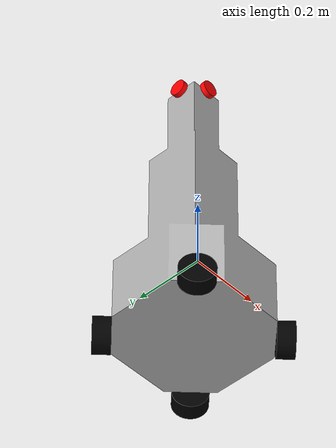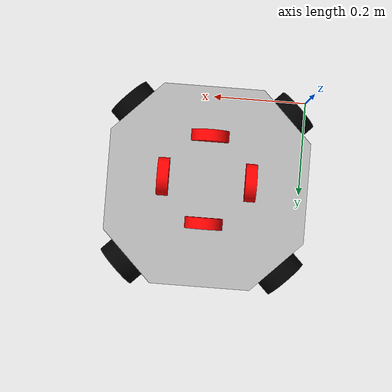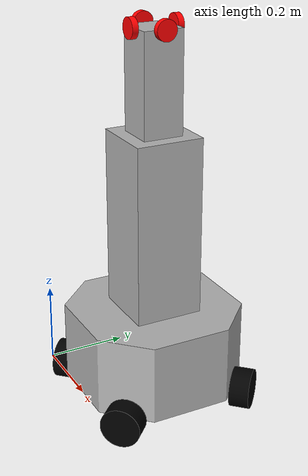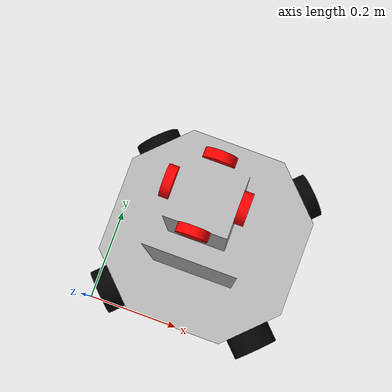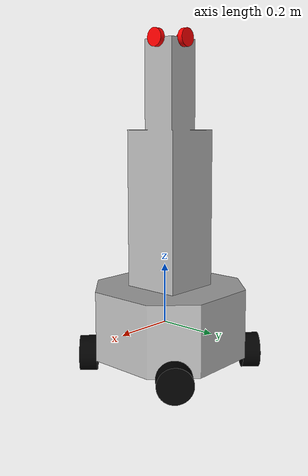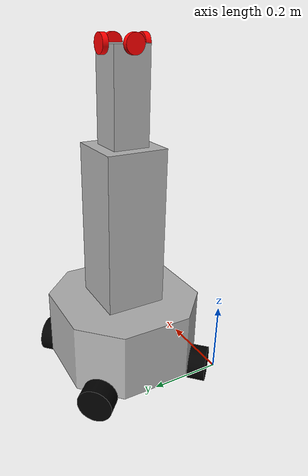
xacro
<?xml version="1.0" ?>
<robot name="robocup_bot" xmlns:xacro="http://www.ros.org/wiki/xacro">

<xacro:include filename="$(find robocup_bot_description)/urdf/materials.xacro" />
<xacro:include filename="$(find robocup_bot_description)/urdf/robocup_bot.trans" />
<xacro:include filename="$(find robocup_bot_description)/urdf/robocup_bot.gazebo" />
<xacro:include filename="$(find robocup_bot_description)/urdf/camera.xacro" />
<xacro:include filename="$(find robocup_bot_description)/urdf/gazebo_control.xacro" />
<link name="base_link">
  <inertial>
    <origin xyz="0.20000000000000004 0.20047111181734686 0.2359412711182623" rpy="0 0 0"/>
    <mass value="341.51424999999995"/>
    <inertia ixx="18.693283" iyy="18.693146" izz="5.443908" ixy="0.0" iyz="-0.039498" ixz="0.0"/>
  </inertial>
  <visual>
    <origin xyz="0 0 0" rpy="0 0 0"/>
    <geometry>
      <mesh filename="file://$(find robocup_bot_description)/meshes/base_link.stl" scale="0.001 0.001 0.001"/>
    </geometry>
    <material name="silver"/>
  </visual>
  <collision>
    <origin xyz="0 0 0" rpy="0 0 0"/>
    <geometry>
      <mesh filename="file://$(find robocup_bot_description)/meshes/base_link.stl" scale="0.001 0.001 0.001"/>
    </geometry>
  </collision>
</link>

<gazebo reference = "base_link">
  <material>Gazebo/White</material>
</gazebo>

<link name="wheel4_1">
  <inertial>
    <origin xyz="-0.017677669529663785 0.017677669529663653 0.0" rpy="0 0 0"/>
    <mass value="3.0826877913349864"/>
    <inertia ixx="0.003211" iyy="0.003211" izz="0.002569" ixy="-0.000642" iyz="0.0" ixz="0.0"/>
  </inertial>
  <visual>
    <origin xyz="-0.05 -0.35 -0.0" rpy="0 0 0"/>
    <geometry>
      <mesh filename="file://$(find robocup_bot_description)/meshes/wheel4_1.stl" scale="0.001 0.001 0.001"/>
    </geometry>
    <material name="black"/>
  </visual>
  <collision>
    <origin xyz="-0.05 -0.35 -0.0" rpy="0 0 0"/>
    <geometry>
      <mesh filename="file://$(find robocup_bot_description)/meshes/wheel4_1.stl" scale="0.001 0.001 0.001"/>
    </geometry>
  </collision>
</link>
<gazebo reference = "wheel4_1">
  <material>Gazebo/Black</material>
</gazebo>

<link name="wheel2_1">
  <inertial>
    <origin xyz="0.017677669529663764 -0.01767766952966364 0.0" rpy="0 0 0"/>
    <mass value="3.0826877913349757"/>
    <inertia ixx="0.003211" iyy="0.003211" izz="0.002569" ixy="-0.000642" iyz="-0.0" ixz="0.0"/>
  </inertial>
  <visual>
    <origin xyz="-0.35 -0.05 -0.0" rpy="0 0 0"/>
    <geometry>
      <mesh filename="file://$(find robocup_bot_description)/meshes/wheel2_1.stl" scale="0.001 0.001 0.001"/>
    </geometry>
    <material name="black"/>
  </visual>
  <collision>
    <origin xyz="-0.35 -0.05 -0.0" rpy="0 0 0"/>
    <geometry>
      <mesh filename="file://$(find robocup_bot_description)/meshes/wheel2_1.stl" scale="0.001 0.001 0.001"/>
    </geometry>
  </collision>
</link>
<gazebo reference = "wheel2_1">
  <material>Gazebo/Black</material>
</gazebo>

<link name="wheel1_1">
  <inertial>
    <origin xyz="-0.017677669529663716 -0.017677669529663716 0.0" rpy="0 0 0"/>
    <mass value="3.0826877913349864"/>
    <inertia ixx="0.003211" iyy="0.003211" izz="0.002569" ixy="0.000642" iyz="0.0" ixz="0.0"/>
  </inertial>
  <visual>
    <origin xyz="-0.05 -0.05 -0.0" rpy="0 0 0"/>
    <geometry>
      <mesh filename="file://$(find robocup_bot_description)/meshes/wheel1_1.stl" scale="0.001 0.001 0.001"/>
    </geometry>
    <material name="black"/>
  </visual>
  <collision>
    <origin xyz="-0.05 -0.05 -0.0" rpy="0 0 0"/>
    <geometry>
      <mesh filename="file://$(find robocup_bot_description)/meshes/wheel1_1.stl" scale="0.001 0.001 0.001"/>
    </geometry>
  </collision>
</link>
<gazebo reference = "wheel1_1">
  <material>Gazebo/Black</material>
</gazebo>

<link name="wheel3_1">
  <inertial>
    <origin xyz="0.017677669529663376 0.017677669529663764 0.0" rpy="0 0 0"/>
    <mass value="3.082687791334989"/>
    <inertia ixx="0.003211" iyy="0.003211" izz="0.002569" ixy="0.000642" iyz="-0.0" ixz="0.0"/>
  </inertial>
  <visual>
    <origin xyz="-0.35 -0.35 -0.0" rpy="0 0 0"/>
    <geometry>
      <mesh filename="file://$(find robocup_bot_description)/meshes/wheel3_1.stl" scale="0.001 0.001 0.001"/>
    </geometry>
    <material name="black"/>
  </visual>
  <collision>
    <origin xyz="-0.35 -0.35 -0.0" rpy="0 0 0"/>
    <geometry>
      <mesh filename="file://$(find robocup_bot_description)/meshes/wheel3_1.stl" scale="0.001 0.001 0.001"/>
    </geometry>
  </collision>
</link>
<gazebo reference = "wheel3_1">
  <material>Gazebo/Black</material>
</gazebo>

<link name="cam1_1">
  <inertial>
    <origin xyz="-0.007500000000000007 -1.2192107856634493e-07 1.1102230246251565e-16" rpy="0 0 0"/>
    <mass value="0.23120158435012447"/>
    <inertia ixx="7.2e-05" iyy="4e-05" izz="4e-05" ixy="-0.0" iyz="0.0" ixz="-0.0"/>
  </inertial>
  <visual>
    <origin xyz="-0.15 -0.201322 -0.9" rpy="0 0 0"/>
    <geometry>
      <mesh filename="file://$(find robocup_bot_description)/meshes/cam1_1.stl" scale="0.001 0.001 0.001"/>
    </geometry>
    <material name="red"/>
  </visual>
  <collision>
    <origin xyz="-0.15 -0.201322 -0.9" rpy="0 0 0"/>
    <geometry>
      <mesh filename="file://$(find robocup_bot_description)/meshes/cam1_1.stl" scale="0.001 0.001 0.001"/>
    </geometry>
  </collision>
</link>
<gazebo reference = "cam1_1">
  <material>Gazebo/Red</material>
</gazebo>

<link name="cam2_1">
  <inertial>
    <origin xyz="0.0 0.00749987807892144 0.0" rpy="0 0 0"/>
    <mass value="0.23120158435012242"/>
    <inertia ixx="4e-05" iyy="7.2e-05" izz="4e-05" ixy="0.0" iyz="0.0" ixz="-0.0"/>
  </inertial>
  <visual>
    <origin xyz="-0.2 -0.251322 -0.9" rpy="0 0 0"/>
    <geometry>
      <mesh filename="file://$(find robocup_bot_description)/meshes/cam2_1.stl" scale="0.001 0.001 0.001"/>
    </geometry>
    <material name="red"/>
  </visual>
  <collision>
    <origin xyz="-0.2 -0.251322 -0.9" rpy="0 0 0"/>
    <geometry>
      <mesh filename="file://$(find robocup_bot_description)/meshes/cam2_1.stl" scale="0.001 0.001 0.001"/>
    </geometry>
  </collision>
</link>
<gazebo reference = "cam2_1">
  <material>Gazebo/Red</material>
</gazebo>

<link name="cam3_1">
  <inertial>
    <origin xyz="0.007500000000000007 -1.2192107856634493e-07 0.0" rpy="0 0 0"/>
    <mass value="0.2312015843501238"/>
    <inertia ixx="7.2e-05" iyy="4e-05" izz="4e-05" ixy="-0.0" iyz="-0.0" ixz="0.0"/>
  </inertial>
  <visual>
    <origin xyz="-0.25 -0.201322 -0.9" rpy="0 0 0"/>
    <geometry>
      <mesh filename="file://$(find robocup_bot_description)/meshes/cam3_1.stl" scale="0.001 0.001 0.001"/>
    </geometry>
    <material name="red"/>
  </visual>
  <collision>
    <origin xyz="-0.25 -0.201322 -0.9" rpy="0 0 0"/>
    <geometry>
      <mesh filename="file://$(find robocup_bot_description)/meshes/cam3_1.stl" scale="0.001 0.001 0.001"/>
    </geometry>
  </collision>
</link>
<gazebo reference = "cam3_1">
  <material>Gazebo/Red</material>
</gazebo>

<link name="cam4_1">
  <inertial>
    <origin xyz="0.0 -0.007500121921078573 0.0" rpy="0 0 0"/>
    <mass value="0.2312015843501238"/>
    <inertia ixx="4e-05" iyy="7.2e-05" izz="4e-05" ixy="0.0" iyz="0.0" ixz="0.0"/>
  </inertial>
  <visual>
    <origin xyz="-0.2 -0.151322 -0.9" rpy="0 0 0"/>
    <geometry>
      <mesh filename="file://$(find robocup_bot_description)/meshes/cam4_1.stl" scale="0.001 0.001 0.001"/>
    </geometry>
    <material name="red"/>
  </visual>
  <collision>
    <origin xyz="-0.2 -0.151322 -0.9" rpy="0 0 0"/>
    <geometry>
      <mesh filename="file://$(find robocup_bot_description)/meshes/cam4_1.stl" scale="0.001 0.001 0.001"/>
    </geometry>
  </collision>
</link>
<gazebo reference = "cam4_1">
  <material>Gazebo/Red</material>
</gazebo>

<joint name="wheel42base" type="continuous">
  <origin xyz="0.05 0.35 0.0" rpy="0 0 0"/>
  <parent link="base_link"/>
  <child link="wheel4_1"/>
  <axis xyz="-0.707107 0.707107 0.0"/>
</joint>

<joint name="wheel22base" type="continuous">
  <origin xyz="0.35 0.05 0.0" rpy="0 0 0"/>
  <parent link="base_link"/>
  <child link="wheel2_1"/>
  <axis xyz="0.707107 -0.707107 0.0"/>
</joint>

<joint name="wheel32base" type="continuous">
  <origin xyz="0.05 0.05 0.0" rpy="0 0 0"/>
  <parent link="base_link"/>
  <child link="wheel1_1"/>
  <axis xyz="-0.707107 -0.707107 0.0"/>
</joint>

<joint name="wheel12base" type="continuous">
  <origin xyz="0.35 0.35 0.0" rpy="0 0 0"/>
  <parent link="base_link"/>
  <child link="wheel3_1"/>
  <axis xyz="0.707107 0.707107 0.0"/>
</joint>

<joint name="cam12base" type="fixed">
  <origin xyz="0.15 0.201322 0.9" rpy="0 0 0"/>
  <parent link="base_link"/>
  <child link="cam1_1"/>
</joint>

<joint name="cam22base" type="fixed">
  <origin xyz="0.2 0.251322 0.9" rpy="0 0 0"/>
  <parent link="base_link"/>
  <child link="cam2_1"/>
</joint>

<joint name="Rigid 15" type="fixed">
  <origin xyz="0.25 0.201322 0.9" rpy="0 0 0"/>
  <parent link="base_link"/>
  <child link="cam3_1"/>
</joint>

<joint name="Rigid 16" type="fixed">
  <origin xyz="0.2 0.151322 0.9" rpy="0 0 0"/>
  <parent link="base_link"/>
  <child link="cam4_1"/>
</joint>

</robot>

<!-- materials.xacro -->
<robot name="robocup_bot" xmlns:xacro="http://www.ros.org/wiki/xacro" >

<material name="silver">
  <color rgba="0.700 0.700 0.700 1.000"/>
</material>

<material name="red">
  <color rgba="1 0 0 1"/>
</material>

<material name="black">
  <color rgba="0 0 0 1"/>
</material>

</robot>

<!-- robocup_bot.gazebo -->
<robot name="robocup_bot" xmlns:xacro="http://www.ros.org/wiki/xacro" >

<xacro:property name="body_color" value="Gazebo/Silver" />

<gazebo>
  <plugin name="control" filename="libgazebo_ros_control.so"/>
</gazebo>
<gazebo reference="base_link">
  <material>${body_color}</material>
  <mu1>0.2</mu1>
  <mu2>0.2</mu2>
  <self_collide>true</self_collide>
  <gravity>true</gravity>
</gazebo>

<gazebo reference="wheel4_1">
  <material>${body_color}</material>
  <mu1>0.2</mu1>
  <mu2>0.2</mu2>
  <self_collide>true</self_collide>
</gazebo>

<gazebo reference="wheel2_1">
  <material>${body_color}</material>
  <mu1>0.2</mu1>
  <mu2>0.2</mu2>
  <self_collide>true</self_collide>
</gazebo>

<gazebo reference="wheel1_1">
  <material>${body_color}</material>
  <mu1>0.2</mu1>
  <mu2>0.2</mu2>
  <self_collide>true</self_collide>
</gazebo>

<gazebo reference="wheel3_1">
  <material>${body_color}</material>
  <mu1>0.2</mu1>
  <mu2>0.2</mu2>
  <self_collide>true</self_collide>
</gazebo>

<gazebo reference="cam1_1">
  <material>${body_color}</material>
  <mu1>0.2</mu1>
  <mu2>0.2</mu2>
  <self_collide>true</self_collide>
</gazebo>

<gazebo reference="cam2_1">
  <material>${body_color}</material>
  <mu1>0.2</mu1>
  <mu2>0.2</mu2>
  <self_collide>true</self_collide>
</gazebo>

<gazebo reference="cam3_1">
  <material>${body_color}</material>
  <mu1>0.2</mu1>
  <mu2>0.2</mu2>
  <self_collide>true</self_collide>
</gazebo>

<gazebo reference="cam4_1">
  <material>${body_color}</material>
  <mu1>0.2</mu1>
  <mu2>0.2</mu2>
  <self_collide>true</self_collide>
</gazebo>

</robot>

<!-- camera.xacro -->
<robot xmlns:xacro="http://www.ros.org/wiki/xacro" >

    <joint name="camera_optical_joint_1" type="fixed">
        <parent link="cam1_1"/>
        <child link="camera_link_optical_1"/>
        <origin xyz="0 0 0" rpy="${0} 0 ${pi}"/>
    </joint>

    <link name="camera_link_optical_1"/>

    <gazebo reference="camera_link_optical_1">
        <sensor name="camera_1" type="camera">
            <pose> 0 0 0 0 0 0 </pose>
            <visualize>true</visualize>
            <update_rate>10</update_rate>
            <camera>
                <horizontal_fov>1.089</horizontal_fov>
                <image>
                    <format>R8G8B8</format>
                    <width>640</width>
                    <height>480</height>
                </image>
                <clip>
                    <near>0.05</near>
                    <far>8.0</far>
                </clip>
            </camera>
            <plugin name="camera_controller_1" filename="libgazebo_ros_camera.so">
                <frame_name>camera_link_optical_1</frame_name>
            </plugin>
        </sensor>
    </gazebo>

    <joint name="camera_optical_joint_2" type="fixed">
        <parent link="cam2_1"/>
        <child link="camera_link_optical_2"/>
        <origin xyz="0 0 0" rpy="${0} 0 ${pi/2}"/>
    </joint>

    <link name="camera_link_optical_2"/>

    <gazebo reference="camera_link_optical_2">
        <sensor name="camera_2" type="camera">
            <pose> 0 0 0 0 0 0 </pose>
            <visualize>true</visualize>
            <update_rate>10</update_rate>
            <camera>
                <horizontal_fov>1.089</horizontal_fov>
                <image>
                    <format>R8G8B8</format>
                    <width>640</width>
                    <height>480</height>
                </image>
                <clip>
                    <near>0.05</near>
                    <far>8.0</far>
                </clip>
            </camera>
            <plugin name="camera_controller_2" filename="libgazebo_ros_camera.so">
                <frame_name>camera_link_optical_2</frame_name>
            </plugin>
        </sensor>
    </gazebo>

    <joint name="camera_optical_joint_3" type="fixed">
        <parent link="cam3_1"/>
        <child link="camera_link_optical_3"/>
        <origin xyz="0 0 0" rpy="${0} 0 ${0}"/>
    </joint>

    <link name="camera_link_optical_3"/>

    <gazebo reference="camera_link_optical_3">
        <sensor name="camera_3" type="camera">
            <pose> 0 0 0 0 0 0 </pose>
            <visualize>true</visualize>
            <update_rate>10</update_rate>
            <camera>
                <horizontal_fov>1.089</horizontal_fov>
                <image>
                    <format>R8G8B8</format>
                    <width>640</width>
                    <height>480</height>
                </image>
                <clip>
                    <near>0.05</near>
                    <far>8.0</far>
                </clip>
            </camera>
            <plugin name="camera_controller_3" filename="libgazebo_ros_camera.so">
                <frame_name>camera_link_optical_3</frame_name>
            </plugin>
        </sensor>
    </gazebo>

    <joint name="camera_optical_joint_ 4" type="fixed">
        <parent link="cam4_1"/>
        <child link="camera_link_optical_4"/>
        <origin xyz="0 0 0" rpy="${0} 0 ${-pi/2}"/>
    </joint>

    <link name="camera_link_optical_4"/>

    <gazebo reference="camera_link_optical_4">
        <sensor name="camera_4" type="camera">
            <pose> 0 0 0 0 0 0 </pose>
            <visualize>true</visualize>
            <update_rate>10</update_rate>
            <camera>
                <horizontal_fov>1.089</horizontal_fov>
                <image>
                    <format>R8G8B8</format>
                    <width>640</width>
                    <height>480</height>
                </image>
                <clip>
                    <near>0.05</near>
                    <far>8.0</far>
                </clip>
            </camera>
            <plugin name="camera_controller_4" filename="libgazebo_ros_camera.so">
                <frame_name>camera_link_optical_4</frame_name>
            </plugin>
        </sensor>
    </gazebo>

</robot>
